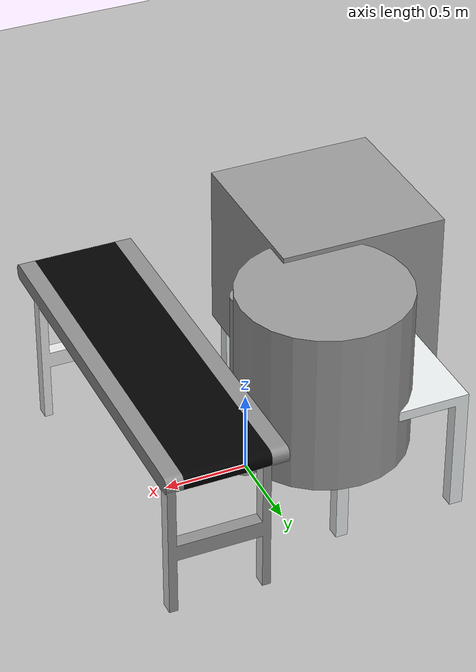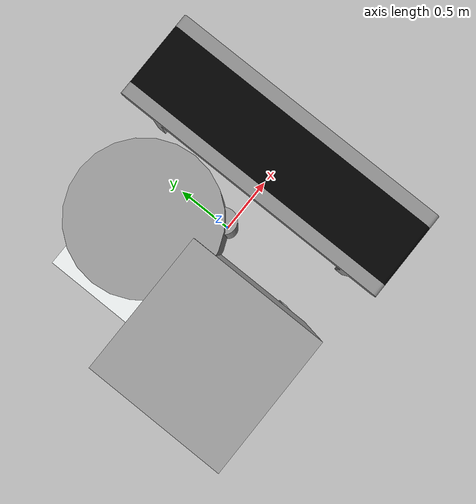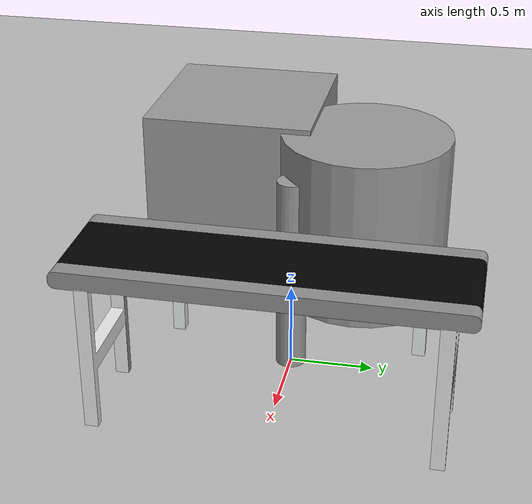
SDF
<sdf version="1.6">
 <world name="default">
  <light name="sun" type="directional">
   <pose>0 0 10 0 -0 0</pose>
   <diffuse>0.8 0.8 0.8 1</diffuse>
   <specular>0.2 0.2 0.2 1</specular>
   <attenuation>
    <range>1000</range>
    <constant>0.9</constant>
    <linear>0.01</linear>
    <quadratic>0.001</quadratic>
   </attenuation>
   <direction>-0.5 0.1 -0.9</direction>
  </light>
  <model name="ground_plane">
   <static>1</static>
   <link name="link">
    <collision name="collision">
     <geometry><plane><normal>0 0 1</normal><size>100 100</size></plane></geometry>
     <surface>
      <contact><collide_bitmask>65535</collide_bitmask></contact>
      <friction><ode><mu>100</mu><mu2>50</mu2></ode></friction>
     </surface>
    </collision>
    <visual name="visual">
     <cast_shadows>0</cast_shadows>
     <geometry><plane><normal>0 0 1</normal><size>100 100</size></plane></geometry>
     <material>
      <script><uri>file://media/materials/scripts/gazebo.material</uri><name>Gazebo/Grey</name></script>
     </material>
    </visual>
   </link>
  </model>
  <gravity>0 0 -9.8</gravity>
  <magnetic_field>6e-06 2.3e-05 -4.2e-05</magnetic_field>
  <atmosphere type="adiabatic"/>
  <physics name="default_physics" default="0" type="ode">
   <max_step_size>0.001</max_step_size>
   <real_time_factor>1</real_time_factor>
   <real_time_update_rate>1000</real_time_update_rate>
  </physics>
  <scene><ambient>0.4 0.4 0.4 1</ambient><background>0.7 0.7 0.7 1</background><shadows>1</shadows></scene>
  <spherical_coordinates>
   <surface_model>EARTH_WGS84</surface_model>
   <latitude_deg>0</latitude_deg>
   <longitude_deg>0</longitude_deg>
   <elevation>0</elevation>
   <heading_deg>0</heading_deg>
  </spherical_coordinates>
  <model name="conveyor">
   <link name="link">
    <inertial>
     <mass>1</mass>
     <inertia><ixx>1</ixx><ixy>0</ixy><ixz>0</ixz><iyy>1</iyy><iyz>0</iyz><izz>1</izz></inertia>
    </inertial>
    <visual name="visual">
     <pose>0 0 0.95 0 -0 0</pose>
     <geometry>
      <mesh>
       <scale>0.45 0.35 0.5</scale>
       <uri>file:///home/shu/machine_vision/workspace/IndustrialRobotics/assets/models/conveyor/meshes/conveyor.dae</uri>
      </mesh>
     </geometry>
    </visual>
    <collision name="collision_0">
     <pose>0 0 0.95 0 -0 0</pose>
     <geometry><box><size>2.4 0.8 0.1</size></box></geometry>
     <surface>
      <friction>
       <ode><mu>1</mu><mu2>1</mu2><fdir1>0 0 0</fdir1><slip1>0</slip1><slip2>0</slip2></ode>
       <torsional>
        <coefficient>1</coefficient>
        <patch_radius>0</patch_radius>
        <surface_radius>0</surface_radius>
        <use_patch_radius>1</use_patch_radius>
        <ode><slip>0</slip></ode>
       </torsional>
      </friction>
      <bounce><restitution_coefficient>0</restitution_coefficient><threshold>1e+06</threshold></bounce>
      <contact>
       <collide_without_contact>0</collide_without_contact>
       <collide_without_contact_bitmask>1</collide_without_contact_bitmask>
       <collide_bitmask>1</collide_bitmask>
       <ode>
        <soft_cfm>0</soft_cfm>
        <soft_erp>0.2</soft_erp>
        <kp>1e+13</kp>
        <kd>1</kd>
        <max_vel>0.01</max_vel>
        <min_depth>0</min_depth>
       </ode>
       <bullet>
        <split_impulse>1</split_impulse>
        <split_impulse_penetration_threshold>-0.01</split_impulse_penetration_threshold>
        <soft_cfm>0</soft_cfm>
        <soft_erp>0.2</soft_erp>
        <kp>1e+13</kp>
        <kd>1</kd>
       </bullet>
      </contact>
     </surface>
    </collision>
   </link>
   <static>1</static>
   <pose>0.6 0 0 0 -0 1.57</pose>
  </model>
  <model name="ground_logo_corner">
   <static>1</static>
   <link name="link">
    <visual name="visual">
     <pose>0 0 0.001 0 -0 0</pose>
     <geometry>
      <mesh>
       <scale>1 1 1</scale>
       <uri>file:///home/shu/machine_vision/workspace/IndustrialRobotics/assets/models/ground_logo_big/meshes/ground_logo.dae</uri>
      </mesh>
     </geometry>
    </visual>
   </link>
   <pose>-0.5 0 0 0 -0 1.57</pose>
  </model>
  <model name="target_table">
   <link name="link">
    <inertial>
     <mass>1</mass>
     <inertia><ixx>1</ixx><ixy>0</ixy><ixz>0</ixz><iyy>1</iyy><iyz>0</iyz><izz>1</izz></inertia>
    </inertial>
    <visual name="visual">
     <pose>0 0 0.73 0 -0 1.57</pose>
     <geometry>
      <mesh>
       <scale>1 1 1</scale>
       <uri>file:///home/shu/machine_vision/workspace/IndustrialRobotics/assets/models/target_table/meshes/target_table.dae</uri>
      </mesh>
     </geometry>
    </visual>
    <collision name="collision_0">
     <pose>0 0 0.73 0 -0 0</pose>
     <geometry><box><size>1.6 0.8 0.06</size></box></geometry>
     <surface>
      <friction>
       <ode><mu>1</mu><mu2>1</mu2><fdir1>0 0 0</fdir1><slip1>0</slip1><slip2>0</slip2></ode>
       <torsional>
        <coefficient>1</coefficient>
        <patch_radius>0</patch_radius>
        <surface_radius>0</surface_radius>
        <use_patch_radius>1</use_patch_radius>
        <ode><slip>0</slip></ode>
       </torsional>
      </friction>
      <bounce><restitution_coefficient>0</restitution_coefficient><threshold>1e+06</threshold></bounce>
      <contact>
       <collide_without_contact>0</collide_without_contact>
       <collide_without_contact_bitmask>1</collide_without_contact_bitmask>
       <collide_bitmask>1</collide_bitmask>
       <ode>
        <soft_cfm>0</soft_cfm>
        <soft_erp>0.2</soft_erp>
        <kp>1e+13</kp>
        <kd>1</kd>
        <max_vel>0.01</max_vel>
        <min_depth>0</min_depth>
       </ode>
       <bullet>
        <split_impulse>1</split_impulse>
        <split_impulse_penetration_threshold>-0.01</split_impulse_penetration_threshold>
        <soft_cfm>0</soft_cfm>
        <soft_erp>0.2</soft_erp>
        <kp>1e+13</kp>
        <kd>1</kd>
       </bullet>
      </contact>
     </surface>
    </collision>
   </link>
   <static>1</static>
   <pose>-0.6 0 0 0 -0 1.57</pose>
  </model>
  <model name="robotbase">
   <static>1</static>
   <link name="link">
    <inertial>
     <mass>1</mass>
     <inertia><ixx>0.145833</ixx><ixy>0</ixy><ixz>0</ixz><iyy>0.145833</iyy><iyz>0</iyz><izz>0.125</izz></inertia>
    </inertial>
    <pose>0 0 0.6 0 -0 0</pose>
    <visual name="visual">
     <geometry><cylinder><radius>0.09</radius><length>1.2</length></cylinder></geometry>
     <material>
      <script><name>Gazebo/Grey</name><uri>file://media/materials/scripts/gazebo.material</uri></script>
      <shader type="pixel"><normal_map>__default__</normal_map></shader>
      <ambient>0.3 0.3 0.3 1</ambient>
      <diffuse>0.7 0.7 0.7 1</diffuse>
      <specular>0.01 0.01 0.01 1</specular>
      <emissive>0 0 0 1</emissive>
     </material>
    </visual>
    <collision name="collision">
     <geometry><cylinder><radius>0.09</radius><length>1.1</length></cylinder></geometry>
     <surface>
      <friction>
       <ode><mu>1</mu><mu2>1</mu2><fdir1>0 0 0</fdir1><slip1>0</slip1><slip2>0</slip2></ode>
       <torsional>
        <coefficient>1</coefficient>
        <patch_radius>0</patch_radius>
        <surface_radius>0</surface_radius>
        <use_patch_radius>1</use_patch_radius>
        <ode><slip>0</slip></ode>
       </torsional>
      </friction>
      <bounce><restitution_coefficient>0</restitution_coefficient><threshold>1e+06</threshold></bounce>
      <contact>
       <collide_without_contact>0</collide_without_contact>
       <collide_without_contact_bitmask>1</collide_without_contact_bitmask>
       <collide_bitmask>1</collide_bitmask>
       <ode>
        <soft_cfm>0</soft_cfm>
        <soft_erp>0.2</soft_erp>
        <kp>1e+13</kp>
        <kd>1</kd>
        <max_vel>0.01</max_vel>
        <min_depth>0</min_depth>
       </ode>
       <bullet>
        <split_impulse>1</split_impulse>
        <split_impulse_penetration_threshold>-0.01</split_impulse_penetration_threshold>
        <soft_cfm>0</soft_cfm>
        <soft_erp>0.2</soft_erp>
        <kp>1e+13</kp>
        <kd>1</kd>
       </bullet>
      </contact>
     </surface>
    </collision>
   </link>
   <static>0</static>
  </model>
  <model name="target_4x4">
   <link name="link">
    <inertial>
     <mass>1</mass>
     <inertia><ixx>1</ixx><ixy>0</ixy><ixz>0</ixz><iyy>1</iyy><iyz>0</iyz><izz>1</izz></inertia>
    </inertial>
    <visual name="visual">
     <pose>0 0 0.0075 0 -0 0</pose>
     <geometry>
      <mesh>
       <scale>0.25 0.25 0.25</scale>
       <uri>file:///home/shu/machine_vision/workspace/IndustrialRobotics/assets/models/target_4x4/meshes/target_4x4.dae</uri>
      </mesh>
     </geometry>
    </visual>
    <collision name="collision_4">
     <pose>-0.235 0 0 0 -0 0</pose>
     <geometry><box><size>0.015 0.5 0.335</size></box></geometry>
     <surface>
      <friction>
       <ode><mu>1</mu><mu2>1</mu2><fdir1>0 0 0</fdir1><slip1>0</slip1><slip2>0</slip2></ode>
       <torsional>
        <coefficient>1</coefficient>
        <patch_radius>0</patch_radius>
        <surface_radius>0</surface_radius>
        <use_patch_radius>1</use_patch_radius>
        <ode><slip>0</slip></ode>
       </torsional>
      </friction>
      <bounce><restitution_coefficient>0</restitution_coefficient><threshold>1e+06</threshold></bounce>
      <contact>
       <collide_without_contact>0</collide_without_contact>
       <collide_without_contact_bitmask>1</collide_without_contact_bitmask>
       <collide_bitmask>1</collide_bitmask>
       <ode>
        <soft_cfm>0</soft_cfm>
        <soft_erp>0.2</soft_erp>
        <kp>1e+13</kp>
        <kd>1</kd>
        <max_vel>0.01</max_vel>
        <min_depth>0</min_depth>
       </ode>
       <bullet>
        <split_impulse>1</split_impulse>
        <split_impulse_penetration_threshold>-0.01</split_impulse_penetration_threshold>
        <soft_cfm>0</soft_cfm>
        <soft_erp>0.2</soft_erp>
        <kp>1e+13</kp>
        <kd>1</kd>
       </bullet>
      </contact>
     </surface>
    </collision>
    <collision name="collision_5">
     <pose>0.0025 0 0 0 -0 0</pose>
     <geometry><box><size>0.005 0.5 0.325</size></box></geometry>
     <surface>
      <friction>
       <ode><mu>1</mu><mu2>1</mu2><fdir1>0 0 0</fdir1><slip1>0</slip1><slip2>0</slip2></ode>
       <torsional>
        <coefficient>1</coefficient>
        <patch_radius>0</patch_radius>
        <surface_radius>0</surface_radius>
        <use_patch_radius>1</use_patch_radius>
        <ode><slip>0</slip></ode>
       </torsional>
      </friction>
      <bounce><restitution_coefficient>0</restitution_coefficient><threshold>1e+06</threshold></bounce>
      <contact>
       <collide_without_contact>0</collide_without_contact>
       <collide_without_contact_bitmask>1</collide_without_contact_bitmask>
       <collide_bitmask>1</collide_bitmask>
       <ode>
        <soft_cfm>0</soft_cfm>
        <soft_erp>0.2</soft_erp>
        <kp>1e+13</kp>
        <kd>1</kd>
        <max_vel>0.01</max_vel>
        <min_depth>0</min_depth>
       </ode>
       <bullet>
        <split_impulse>1</split_impulse>
        <split_impulse_penetration_threshold>-0.01</split_impulse_penetration_threshold>
        <soft_cfm>0</soft_cfm>
        <soft_erp>0.2</soft_erp>
        <kp>1e+13</kp>
        <kd>1</kd>
       </bullet>
      </contact>
     </surface>
    </collision>
    <collision name="collision_6">
     <pose>0.12 0 0 0 -0 0</pose>
     <geometry><box><size>0.005 0.5 0.325</size></box></geometry>
     <surface>
      <friction>
       <ode><mu>1</mu><mu2>1</mu2><fdir1>0 0 0</fdir1><slip1>0</slip1><slip2>0</slip2></ode>
       <torsional>
        <coefficient>1</coefficient>
        <patch_radius>0</patch_radius>
        <surface_radius>0</surface_radius>
        <use_patch_radius>1</use_patch_radius>
        <ode><slip>0</slip></ode>
       </torsional>
      </friction>
      <bounce><restitution_coefficient>0</restitution_coefficient><threshold>1e+06</threshold></bounce>
      <contact>
       <collide_without_contact>0</collide_without_contact>
       <collide_without_contact_bitmask>1</collide_without_contact_bitmask>
       <collide_bitmask>1</collide_bitmask>
       <ode>
        <soft_cfm>0</soft_cfm>
        <soft_erp>0.2</soft_erp>
        <kp>1e+13</kp>
        <kd>1</kd>
        <max_vel>0.01</max_vel>
        <min_depth>0</min_depth>
       </ode>
       <bullet>
        <split_impulse>1</split_impulse>
        <split_impulse_penetration_threshold>-0.01</split_impulse_penetration_threshold>
        <soft_cfm>0</soft_cfm>
        <soft_erp>0.2</soft_erp>
        <kp>1e+13</kp>
        <kd>1</kd>
       </bullet>
      </contact>
     </surface>
    </collision>
    <collision name="collision_3">
     <pose>0.235 0 0 0 -0 0</pose>
     <geometry><box><size>0.015 0.5 0.335</size></box></geometry>
     <surface>
      <friction>
       <ode><mu>1</mu><mu2>1</mu2><fdir1>0 0 0</fdir1><slip1>0</slip1><slip2>0</slip2></ode>
       <torsional>
        <coefficient>1</coefficient>
        <patch_radius>0</patch_radius>
        <surface_radius>0</surface_radius>
        <use_patch_radius>1</use_patch_radius>
        <ode><slip>0</slip></ode>
       </torsional>
      </friction>
      <bounce><restitution_coefficient>0</restitution_coefficient><threshold>1e+06</threshold></bounce>
      <contact>
       <collide_without_contact>0</collide_without_contact>
       <collide_without_contact_bitmask>1</collide_without_contact_bitmask>
       <collide_bitmask>1</collide_bitmask>
       <ode>
        <soft_cfm>0</soft_cfm>
        <soft_erp>0.2</soft_erp>
        <kp>1e+13</kp>
        <kd>1</kd>
        <max_vel>0.01</max_vel>
        <min_depth>0</min_depth>
       </ode>
       <bullet>
        <split_impulse>1</split_impulse>
        <split_impulse_penetration_threshold>-0.01</split_impulse_penetration_threshold>
        <soft_cfm>0</soft_cfm>
        <soft_erp>0.2</soft_erp>
        <kp>1e+13</kp>
        <kd>1</kd>
       </bullet>
      </contact>
     </surface>
    </collision>
    <collision name="collision_1">
     <pose>0 0.235 0 0 -0 0</pose>
     <geometry><box><size>0.5 0.015 0.335</size></box></geometry>
     <surface>
      <friction>
       <ode><mu>1</mu><mu2>1</mu2><fdir1>0 0 0</fdir1><slip1>0</slip1><slip2>0</slip2></ode>
       <torsional>
        <coefficient>1</coefficient>
        <patch_radius>0</patch_radius>
        <surface_radius>0</surface_radius>
        <use_patch_radius>1</use_patch_radius>
        <ode><slip>0</slip></ode>
       </torsional>
      </friction>
      <bounce><restitution_coefficient>0</restitution_coefficient><threshold>1e+06</threshold></bounce>
      <contact>
       <collide_without_contact>0</collide_without_contact>
       <collide_without_contact_bitmask>1</collide_without_contact_bitmask>
       <collide_bitmask>1</collide_bitmask>
       <ode>
        <soft_cfm>0</soft_cfm>
        <soft_erp>0.2</soft_erp>
        <kp>1e+13</kp>
        <kd>1</kd>
        <max_vel>0.01</max_vel>
        <min_depth>0</min_depth>
       </ode>
       <bullet>
        <split_impulse>1</split_impulse>
        <split_impulse_penetration_threshold>-0.01</split_impulse_penetration_threshold>
        <soft_cfm>0</soft_cfm>
        <soft_erp>0.2</soft_erp>
        <kp>1e+13</kp>
        <kd>1</kd>
       </bullet>
      </contact>
     </surface>
    </collision>
    <collision name="collision_2">
     <pose>0 -0.235 0 0 -0 0</pose>
     <geometry><box><size>0.5 0.015 0.335</size></box></geometry>
     <surface>
      <friction>
       <ode><mu>1</mu><mu2>1</mu2><fdir1>0 0 0</fdir1><slip1>0</slip1><slip2>0</slip2></ode>
       <torsional>
        <coefficient>1</coefficient>
        <patch_radius>0</patch_radius>
        <surface_radius>0</surface_radius>
        <use_patch_radius>1</use_patch_radius>
        <ode><slip>0</slip></ode>
       </torsional>
      </friction>
      <bounce><restitution_coefficient>0</restitution_coefficient><threshold>1e+06</threshold></bounce>
      <contact>
       <collide_without_contact>0</collide_without_contact>
       <collide_without_contact_bitmask>1</collide_without_contact_bitmask>
       <collide_bitmask>1</collide_bitmask>
       <ode>
        <soft_cfm>0</soft_cfm>
        <soft_erp>0.2</soft_erp>
        <kp>1e+13</kp>
        <kd>1</kd>
        <max_vel>0.01</max_vel>
        <min_depth>0</min_depth>
       </ode>
       <bullet>
        <split_impulse>1</split_impulse>
        <split_impulse_penetration_threshold>-0.01</split_impulse_penetration_threshold>
        <soft_cfm>0</soft_cfm>
        <soft_erp>0.2</soft_erp>
        <kp>1e+13</kp>
        <kd>1</kd>
       </bullet>
      </contact>
     </surface>
    </collision>
    <collision name="collision_0">
     <geometry><box><size>0.5 0.5 0.02</size></box></geometry>
     <surface>
      <friction>
       <ode><mu>1</mu><mu2>1</mu2><fdir1>0 0 0</fdir1><slip1>0</slip1><slip2>0</slip2></ode>
       <torsional>
        <coefficient>1</coefficient>
        <patch_radius>0</patch_radius>
        <surface_radius>0</surface_radius>
        <use_patch_radius>1</use_patch_radius>
        <ode><slip>0</slip></ode>
       </torsional>
      </friction>
      <bounce><restitution_coefficient>0</restitution_coefficient><threshold>1e+06</threshold></bounce>
      <contact>
       <collide_without_contact>0</collide_without_contact>
       <collide_without_contact_bitmask>1</collide_without_contact_bitmask>
       <collide_bitmask>1</collide_bitmask>
       <ode>
        <soft_cfm>0</soft_cfm>
        <soft_erp>0.2</soft_erp>
        <kp>1e+13</kp>
        <kd>1</kd>
        <max_vel>0.01</max_vel>
        <min_depth>0</min_depth>
       </ode>
       <bullet>
        <split_impulse>1</split_impulse>
        <split_impulse_penetration_threshold>-0.01</split_impulse_penetration_threshold>
        <soft_cfm>0</soft_cfm>
        <soft_erp>0.2</soft_erp>
        <kp>1e+13</kp>
        <kd>1</kd>
       </bullet>
      </contact>
     </surface>
    </collision>
    <collision name="collision_7">
     <pose>-0.115 0 0 0 -0 0</pose>
     <geometry><box><size>0.015 0.5 0.325</size></box></geometry>
     <surface>
      <friction>
       <ode><mu>1</mu><mu2>1</mu2><fdir1>0 0 0</fdir1><slip1>0</slip1><slip2>0</slip2></ode>
       <torsional>
        <coefficient>1</coefficient>
        <patch_radius>0</patch_radius>
        <surface_radius>0</surface_radius>
        <use_patch_radius>1</use_patch_radius>
        <ode><slip>0</slip></ode>
       </torsional>
      </friction>
      <bounce><restitution_coefficient>0</restitution_coefficient><threshold>1e+06</threshold></bounce>
      <contact>
       <collide_without_contact>0</collide_without_contact>
       <collide_without_contact_bitmask>1</collide_without_contact_bitmask>
       <collide_bitmask>1</collide_bitmask>
       <ode>
        <soft_cfm>0</soft_cfm>
        <soft_erp>0.2</soft_erp>
        <kp>1e+13</kp>
        <kd>1</kd>
        <max_vel>0.01</max_vel>
        <min_depth>0</min_depth>
       </ode>
       <bullet>
        <split_impulse>1</split_impulse>
        <split_impulse_penetration_threshold>-0.01</split_impulse_penetration_threshold>
        <soft_cfm>0</soft_cfm>
        <soft_erp>0.2</soft_erp>
        <kp>1e+13</kp>
        <kd>1</kd>
       </bullet>
      </contact>
     </surface>
    </collision>
    <collision name="collision_8">
     <pose>0 0.0025 0 0 -0 0</pose>
     <geometry><box><size>0.5 0.005 0.325</size></box></geometry>
     <surface>
      <friction>
       <ode><mu>1</mu><mu2>1</mu2><fdir1>0 0 0</fdir1><slip1>0</slip1><slip2>0</slip2></ode>
       <torsional>
        <coefficient>1</coefficient>
        <patch_radius>0</patch_radius>
        <surface_radius>0</surface_radius>
        <use_patch_radius>1</use_patch_radius>
        <ode><slip>0</slip></ode>
       </torsional>
      </friction>
      <bounce><restitution_coefficient>0</restitution_coefficient><threshold>1e+06</threshold></bounce>
      <contact>
       <collide_without_contact>0</collide_without_contact>
       <collide_without_contact_bitmask>1</collide_without_contact_bitmask>
       <collide_bitmask>1</collide_bitmask>
       <ode>
        <soft_cfm>0</soft_cfm>
        <soft_erp>0.2</soft_erp>
        <kp>1e+13</kp>
        <kd>1</kd>
        <max_vel>0.01</max_vel>
        <min_depth>0</min_depth>
       </ode>
       <bullet>
        <split_impulse>1</split_impulse>
        <split_impulse_penetration_threshold>-0.01</split_impulse_penetration_threshold>
        <soft_cfm>0</soft_cfm>
        <soft_erp>0.2</soft_erp>
        <kp>1e+13</kp>
        <kd>1</kd>
       </bullet>
      </contact>
     </surface>
    </collision>
    <collision name="collision_9">
     <pose>0 0.12 0 0 -0 0</pose>
     <geometry><box><size>0.5 0.005 0.325</size></box></geometry>
     <surface>
      <friction>
       <ode><mu>1</mu><mu2>1</mu2><fdir1>0 0 0</fdir1><slip1>0</slip1><slip2>0</slip2></ode>
       <torsional>
        <coefficient>1</coefficient>
        <patch_radius>0</patch_radius>
        <surface_radius>0</surface_radius>
        <use_patch_radius>1</use_patch_radius>
        <ode><slip>0</slip></ode>
       </torsional>
      </friction>
      <bounce><restitution_coefficient>0</restitution_coefficient><threshold>1e+06</threshold></bounce>
      <contact>
       <collide_without_contact>0</collide_without_contact>
       <collide_without_contact_bitmask>1</collide_without_contact_bitmask>
       <collide_bitmask>1</collide_bitmask>
       <ode>
        <soft_cfm>0</soft_cfm>
        <soft_erp>0.2</soft_erp>
        <kp>1e+13</kp>
        <kd>1</kd>
        <max_vel>0.01</max_vel>
        <min_depth>0</min_depth>
       </ode>
       <bullet>
        <split_impulse>1</split_impulse>
        <split_impulse_penetration_threshold>-0.01</split_impulse_penetration_threshold>
        <soft_cfm>0</soft_cfm>
        <soft_erp>0.2</soft_erp>
        <kp>1e+13</kp>
        <kd>1</kd>
       </bullet>
      </contact>
     </surface>
    </collision>
    <collision name="collision_10">
     <pose>0 -0.115 0 0 -0 0</pose>
     <geometry><box><size>0.5 0.005 0.325</size></box></geometry>
     <surface>
      <friction>
       <ode><mu>1</mu><mu2>1</mu2><fdir1>0 0 0</fdir1><slip1>0</slip1><slip2>0</slip2></ode>
       <torsional>
        <coefficient>1</coefficient>
        <patch_radius>0</patch_radius>
        <surface_radius>0</surface_radius>
        <use_patch_radius>1</use_patch_radius>
        <ode><slip>0</slip></ode>
       </torsional>
      </friction>
      <bounce><restitution_coefficient>0</restitution_coefficient><threshold>1e+06</threshold></bounce>
      <contact>
       <collide_without_contact>0</collide_without_contact>
       <collide_without_contact_bitmask>1</collide_without_contact_bitmask>
       <collide_bitmask>1</collide_bitmask>
       <ode>
        <soft_cfm>0</soft_cfm>
        <soft_erp>0.2</soft_erp>
        <kp>1e+13</kp>
        <kd>1</kd>
        <max_vel>0.01</max_vel>
        <min_depth>0</min_depth>
       </ode>
       <bullet>
        <split_impulse>1</split_impulse>
        <split_impulse_penetration_threshold>-0.01</split_impulse_penetration_threshold>
        <soft_cfm>0</soft_cfm>
        <soft_erp>0.2</soft_erp>
        <kp>1e+13</kp>
        <kd>1</kd>
       </bullet>
      </contact>
     </surface>
    </collision>
   </link>
   <static>1</static>
   <pose>-0.5 0 0.76 0 -0 0</pose>
  </model>
  <model name="unit_box">
   <pose>-0.7 -0.435456 0.927284 0 -2e-06 -0.000979</pose>
   <link name="link">
    <inertial>
     <mass>1</mass>
     <inertia>
      <ixx>0.166667</ixx>
      <ixy>0</ixy>
      <ixz>0</ixz>
      <iyy>0.166667</iyy>
      <iyz>0</iyz>
      <izz>0.166667</izz>
     </inertia>
    </inertial>
    <collision name="collision"><geometry><box><size>1 1 0.999999</size></box></geometry></collision>
    <visual name="visual">
     <geometry><box><size>1 1 0.999999</size></box></geometry>
     <material>
      <script><name>Gazebo/Grey</name><uri>file://media/materials/scripts/gazebo.material</uri></script>
     </material>
    </visual>
   </link>
   <static>1</static>
  </model>
  <model name="unit_cylinder">
   <pose>-0.3 0.38 0.897305 -1.3e-05 -8.1e-05 2.9e-05</pose>
   <link name="link">
    <inertial>
     <mass>1</mass>
     <inertia><ixx>0.145833</ixx><ixy>0</ixy><ixz>0</ixz><iyy>0.145833</iyy><iyz>0</iyz><izz>0.125</izz></inertia>
    </inertial>
    <collision name="collision">
     <geometry><cylinder><radius>0.499999</radius><length>1</length></cylinder></geometry>
    </collision>
    <visual name="visual">
     <geometry><cylinder><radius>0.499999</radius><length>1</length></cylinder></geometry>
     <material>
      <script><name>Gazebo/Grey</name><uri>file://media/materials/scripts/gazebo.material</uri></script>
     </material>
    </visual>
   </link>
   <static>1</static>
  </model>
 </world>
</sdf>
